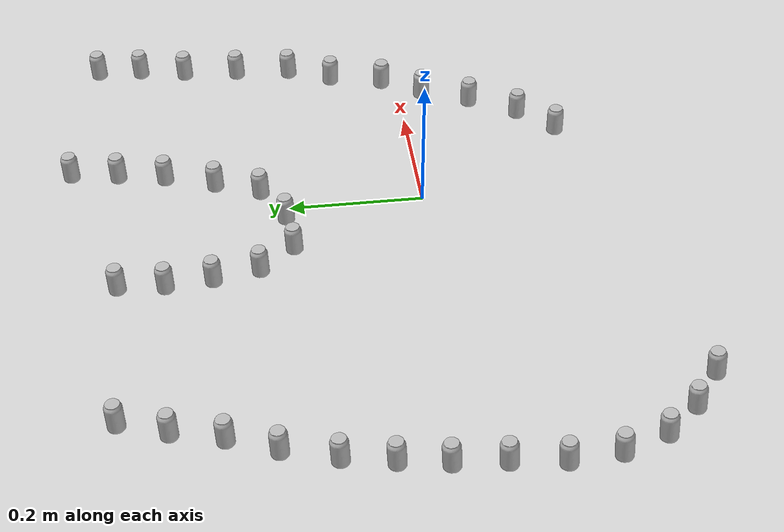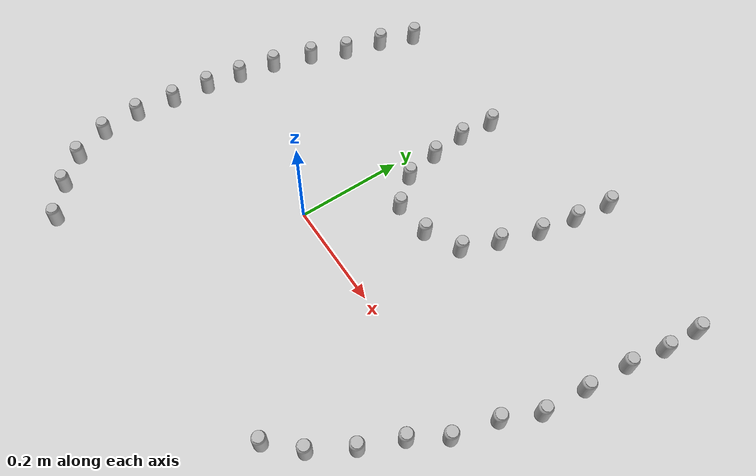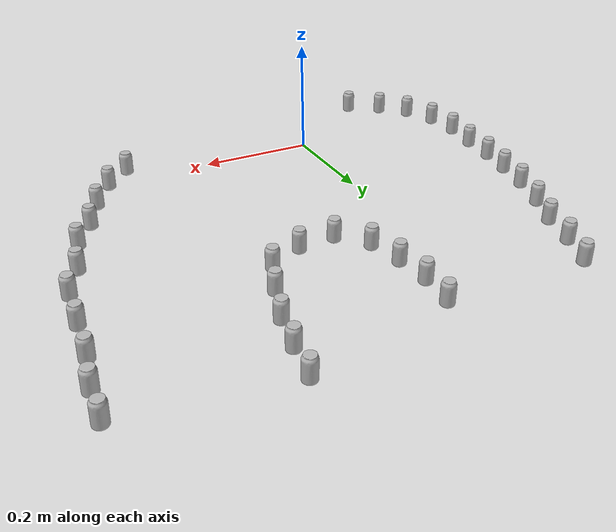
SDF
<sdf version="1.4">
 <world name="default">
  <model name="ground_plane">
   <static>1</static>
   <link name="link">
    <collision name="collision">
     <geometry><plane><normal>0 0 1</normal><size>100 100</size></plane></geometry>
     <surface><friction><ode><mu>100</mu><mu2>50</mu2></ode></friction></surface>
    </collision>
    <visual name="visual">
     <cast_shadows>0</cast_shadows>
     <geometry><plane><normal>0 0 1</normal><size>100 100</size></plane></geometry>
     <material>
      <script><uri>file://media/materials/scripts/gazebo.material</uri><name>Gazebo/Grey</name></script>
     </material>
    </visual>
    <velocity_decay><linear>0</linear><angular>0</angular></velocity_decay>
   </link>
  </model>
  <model name="coke_can">
   <static>1</static>
   <link name="link">
    <inertial>
     <pose>-0.01 -0.012 0.15 0 -0 0</pose>
     <mass>0.39</mass>
     <inertia><ixx>0.00058</ixx><ixy>0</ixy><ixz>0</ixz><iyy>0.00058</iyy><iyz>0</iyz><izz>0.00019</izz></inertia>
    </inertial>
    <collision name="collision">
     <pose>0 0 -0.183 0 -0 0</pose>
     <geometry>
      <mesh><uri>model://coke_can/meshes/coke_can.dae</uri><scale>0.398 0.398 0.398</scale></mesh>
     </geometry>
     <surface>
      <friction><ode><mu>1</mu><mu2>1</mu2></ode></friction>
      <contact><ode><kp>1e+07</kp><kd>1</kd><min_depth>0.001</min_depth><max_vel>0.1</max_vel></ode></contact>
     </surface>
    </collision>
    <visual name="visual">
     <pose>0 0 -0.183 0 -0 0</pose>
     <geometry>
      <mesh><uri>model://coke_can/meshes/coke_can.dae</uri><scale>0.398 0.398 0.398</scale></mesh>
     </geometry>
    </visual>
    <velocity_decay><linear>0</linear><angular>0</angular></velocity_decay>
   </link>
   <pose>0.38604 -0.135676 0 0 -0 0</pose>
  </model>
  <model name="coke_can_0">
   <static>1</static>
   <link name="link">
    <inertial>
     <pose>-0.01 -0.012 0.15 0 -0 0</pose>
     <mass>0.39</mass>
     <inertia><ixx>0.00058</ixx><ixy>0</ixy><ixz>0</ixz><iyy>0.00058</iyy><iyz>0</iyz><izz>0.00019</izz></inertia>
    </inertial>
    <collision name="collision">
     <pose>0 0 -0.183 0 -0 0</pose>
     <geometry>
      <mesh><uri>model://coke_can/meshes/coke_can.dae</uri><scale>0.398 0.398 0.398</scale></mesh>
     </geometry>
     <surface>
      <friction><ode><mu>1</mu><mu2>1</mu2></ode></friction>
      <contact><ode><kp>1e+07</kp><kd>1</kd><min_depth>0.001</min_depth><max_vel>0.1</max_vel></ode></contact>
     </surface>
    </collision>
    <visual name="visual">
     <pose>0 0 -0.183 0 -0 0</pose>
     <geometry>
      <mesh><uri>model://coke_can/meshes/coke_can.dae</uri><scale>0.398 0.398 0.398</scale></mesh>
     </geometry>
    </visual>
    <velocity_decay><linear>0</linear><angular>0</angular></velocity_decay>
   </link>
   <pose>0.418667 -0.059022 0 0 -0 0</pose>
  </model>
  <model name="coke_can_2">
   <static>1</static>
   <link name="link">
    <inertial>
     <pose>-0.01 -0.012 0.15 0 -0 0</pose>
     <mass>0.39</mass>
     <inertia><ixx>0.00058</ixx><ixy>0</ixy><ixz>0</ixz><iyy>0.00058</iyy><iyz>0</iyz><izz>0.00019</izz></inertia>
    </inertial>
    <collision name="collision">
     <pose>0 0 -0.183 0 -0 0</pose>
     <geometry>
      <mesh><uri>model://coke_can/meshes/coke_can.dae</uri><scale>0.398 0.398 0.398</scale></mesh>
     </geometry>
     <surface>
      <friction><ode><mu>1</mu><mu2>1</mu2></ode></friction>
      <contact><ode><kp>1e+07</kp><kd>1</kd><min_depth>0.001</min_depth><max_vel>0.1</max_vel></ode></contact>
     </surface>
    </collision>
    <visual name="visual">
     <pose>0 0 -0.183 0 -0 0</pose>
     <geometry>
      <mesh><uri>model://coke_can/meshes/coke_can.dae</uri><scale>0.398 0.398 0.398</scale></mesh>
     </geometry>
    </visual>
    <velocity_decay><linear>0</linear><angular>0</angular></velocity_decay>
   </link>
   <pose>0.288769 -0.265685 0 0 -0 0</pose>
  </model>
  <model name="coke_can_3">
   <static>1</static>
   <link name="link">
    <inertial>
     <pose>-0.01 -0.012 0.15 0 -0 0</pose>
     <mass>0.39</mass>
     <inertia><ixx>0.00058</ixx><ixy>0</ixy><ixz>0</ixz><iyy>0.00058</iyy><iyz>0</iyz><izz>0.00019</izz></inertia>
    </inertial>
    <collision name="collision">
     <pose>0 0 -0.183 0 -0 0</pose>
     <geometry>
      <mesh><uri>model://coke_can/meshes/coke_can.dae</uri><scale>0.398 0.398 0.398</scale></mesh>
     </geometry>
     <surface>
      <friction><ode><mu>1</mu><mu2>1</mu2></ode></friction>
      <contact><ode><kp>1e+07</kp><kd>1</kd><min_depth>0.001</min_depth><max_vel>0.1</max_vel></ode></contact>
     </surface>
    </collision>
    <visual name="visual">
     <pose>0 0 -0.183 0 -0 0</pose>
     <geometry>
      <mesh><uri>model://coke_can/meshes/coke_can.dae</uri><scale>0.398 0.398 0.398</scale></mesh>
     </geometry>
    </visual>
    <velocity_decay><linear>0</linear><angular>0</angular></velocity_decay>
   </link>
   <pose>0.479275 0.091399 0 0 -0 0</pose>
  </model>
  <model name="coke_can_4">
   <static>1</static>
   <link name="link">
    <inertial>
     <pose>-0.01 -0.012 0.15 0 -0 0</pose>
     <mass>0.39</mass>
     <inertia><ixx>0.00058</ixx><ixy>0</ixy><ixz>0</ixz><iyy>0.00058</iyy><iyz>0</iyz><izz>0.00019</izz></inertia>
    </inertial>
    <collision name="collision">
     <pose>0 0 -0.183 0 -0 0</pose>
     <geometry>
      <mesh><uri>model://coke_can/meshes/coke_can.dae</uri><scale>0.398 0.398 0.398</scale></mesh>
     </geometry>
     <surface>
      <friction><ode><mu>1</mu><mu2>1</mu2></ode></friction>
      <contact><ode><kp>1e+07</kp><kd>1</kd><min_depth>0.001</min_depth><max_vel>0.1</max_vel></ode></contact>
     </surface>
    </collision>
    <visual name="visual">
     <pose>0 0 -0.183 0 -0 0</pose>
     <geometry>
      <mesh><uri>model://coke_can/meshes/coke_can.dae</uri><scale>0.398 0.398 0.398</scale></mesh>
     </geometry>
    </visual>
    <velocity_decay><linear>0</linear><angular>0</angular></velocity_decay>
   </link>
   <pose>0.457915 0.005194 0 0 -0 0</pose>
  </model>
  <model name="coke_can_5">
   <static>1</static>
   <link name="link">
    <inertial>
     <pose>-0.01 -0.012 0.15 0 -0 0</pose>
     <mass>0.39</mass>
     <inertia><ixx>0.00058</ixx><ixy>0</ixy><ixz>0</ixz><iyy>0.00058</iyy><iyz>0</iyz><izz>0.00019</izz></inertia>
    </inertial>
    <collision name="collision">
     <pose>0 0 -0.183 0 -0 0</pose>
     <geometry>
      <mesh><uri>model://coke_can/meshes/coke_can.dae</uri><scale>0.398 0.398 0.398</scale></mesh>
     </geometry>
     <surface>
      <friction><ode><mu>1</mu><mu2>1</mu2></ode></friction>
      <contact><ode><kp>1e+07</kp><kd>1</kd><min_depth>0.001</min_depth><max_vel>0.1</max_vel></ode></contact>
     </surface>
    </collision>
    <visual name="visual">
     <pose>0 0 -0.183 0 -0 0</pose>
     <geometry>
      <mesh><uri>model://coke_can/meshes/coke_can.dae</uri><scale>0.398 0.398 0.398</scale></mesh>
     </geometry>
    </visual>
    <velocity_decay><linear>0</linear><angular>0</angular></velocity_decay>
   </link>
   <pose>0.341948 -0.210761 0 0 -0 0</pose>
  </model>
  <model name="coke_can_6">
   <static>1</static>
   <link name="link">
    <inertial>
     <mass>0.39</mass>
     <inertia><ixx>0.00058</ixx><ixy>0</ixy><ixz>0</ixz><iyy>0.00058</iyy><iyz>0</iyz><izz>0.00019</izz></inertia>
    </inertial>
    <collision name="collision">
     <pose>0 0 -0.183 0 -0 0</pose>
     <geometry>
      <mesh><uri>model://coke_can/meshes/coke_can.dae</uri><scale>0.398 0.398 0.398</scale></mesh>
     </geometry>
     <surface>
      <friction><ode><mu>1</mu><mu2>1</mu2></ode></friction>
      <contact><ode><kp>1e+07</kp><kd>1</kd><min_depth>0.001</min_depth><max_vel>0.1</max_vel></ode></contact>
     </surface>
    </collision>
    <visual name="visual">
     <pose>0 0 -0.183 0 -0 0</pose>
     <geometry>
      <mesh><uri>model://coke_can/meshes/coke_can.dae</uri><scale>0.398 0.398 0.398</scale></mesh>
     </geometry>
    </visual>
    <velocity_decay><linear>0</linear><angular>0</angular></velocity_decay>
   </link>
   <pose>0.511163 0.167151 -0.001657 -0.05647 0.004812 0.001626</pose>
   <static>0</static>
  </model>
  <model name="coke_can_7">
   <static>1</static>
   <link name="link">
    <inertial>
     <mass>0.39</mass>
     <inertia><ixx>0.00058</ixx><ixy>0</ixy><ixz>0</ixz><iyy>0.00058</iyy><iyz>0</iyz><izz>0.00019</izz></inertia>
    </inertial>
    <collision name="collision">
     <pose>0 0 -0.183 0 -0 0</pose>
     <geometry>
      <mesh><uri>model://coke_can/meshes/coke_can.dae</uri><scale>0.398 0.398 0.398</scale></mesh>
     </geometry>
     <surface>
      <friction><ode><mu>1</mu><mu2>1</mu2></ode></friction>
      <contact><ode><kp>1e+07</kp><kd>1</kd><min_depth>0.001</min_depth><max_vel>0.1</max_vel></ode></contact>
     </surface>
    </collision>
    <visual name="visual">
     <pose>0 0 -0.183 0 -0 0</pose>
     <geometry>
      <mesh><uri>model://coke_can/meshes/coke_can.dae</uri><scale>0.398 0.398 0.398</scale></mesh>
     </geometry>
    </visual>
    <velocity_decay><linear>0</linear><angular>0</angular></velocity_decay>
   </link>
   <pose>0.519485 0.256787 -0.001657 -0.05647 0.004812 0.001626</pose>
   <static>0</static>
  </model>
  <model name="coke_can_8">
   <static>1</static>
   <link name="link">
    <inertial>
     <mass>0.39</mass>
     <inertia><ixx>0.00058</ixx><ixy>0</ixy><ixz>0</ixz><iyy>0.00058</iyy><iyz>0</iyz><izz>0.00019</izz></inertia>
    </inertial>
    <collision name="collision">
     <pose>0 0 -0.183 0 -0 0</pose>
     <geometry>
      <mesh><uri>model://coke_can/meshes/coke_can.dae</uri><scale>0.398 0.398 0.398</scale></mesh>
     </geometry>
     <surface>
      <friction><ode><mu>1</mu><mu2>1</mu2></ode></friction>
      <contact><ode><kp>1e+07</kp><kd>1</kd><min_depth>0.001</min_depth><max_vel>0.1</max_vel></ode></contact>
     </surface>
    </collision>
    <visual name="visual">
     <pose>0 0 -0.183 0 -0 0</pose>
     <geometry>
      <mesh><uri>model://coke_can/meshes/coke_can.dae</uri><scale>0.398 0.398 0.398</scale></mesh>
     </geometry>
    </visual>
    <velocity_decay><linear>0</linear><angular>0</angular></velocity_decay>
   </link>
   <pose>0.52765 0.34668 -0.001657 -0.05647 0.004812 0.001626</pose>
   <static>0</static>
  </model>
  <model name="coke_can_9">
   <static>1</static>
   <link name="link">
    <inertial>
     <mass>0.39</mass>
     <inertia><ixx>0.00058</ixx><ixy>0</ixy><ixz>0</ixz><iyy>0.00058</iyy><iyz>0</iyz><izz>0.00019</izz></inertia>
    </inertial>
    <collision name="collision">
     <pose>0 0 -0.183 0 -0 0</pose>
     <geometry>
      <mesh><uri>model://coke_can/meshes/coke_can.dae</uri><scale>0.398 0.398 0.398</scale></mesh>
     </geometry>
     <surface>
      <friction><ode><mu>1</mu><mu2>1</mu2></ode></friction>
      <contact><ode><kp>1e+07</kp><kd>1</kd><min_depth>0.001</min_depth><max_vel>0.1</max_vel></ode></contact>
     </surface>
    </collision>
    <visual name="visual">
     <pose>0 0 -0.183 0 -0 0</pose>
     <geometry>
      <mesh><uri>model://coke_can/meshes/coke_can.dae</uri><scale>0.398 0.398 0.398</scale></mesh>
     </geometry>
    </visual>
    <velocity_decay><linear>0</linear><angular>0</angular></velocity_decay>
   </link>
   <pose>0.541619 0.42249 -0.001657 -0.05647 0.004812 0.001626</pose>
   <static>0</static>
  </model>
  <model name="coke_can_10">
   <static>1</static>
   <link name="link">
    <inertial>
     <mass>0.39</mass>
     <inertia><ixx>0.00058</ixx><ixy>0</ixy><ixz>0</ixz><iyy>0.00058</iyy><iyz>0</iyz><izz>0.00019</izz></inertia>
    </inertial>
    <collision name="collision">
     <pose>0 0 -0.183 0 -0 0</pose>
     <geometry>
      <mesh><uri>model://coke_can/meshes/coke_can.dae</uri><scale>0.398 0.398 0.398</scale></mesh>
     </geometry>
     <surface>
      <friction><ode><mu>1</mu><mu2>1</mu2></ode></friction>
      <contact><ode><kp>1e+07</kp><kd>1</kd><min_depth>0.001</min_depth><max_vel>0.1</max_vel></ode></contact>
     </surface>
    </collision>
    <visual name="visual">
     <pose>0 0 -0.183 0 -0 0</pose>
     <geometry>
      <mesh><uri>model://coke_can/meshes/coke_can.dae</uri><scale>0.398 0.398 0.398</scale></mesh>
     </geometry>
    </visual>
    <velocity_decay><linear>0</linear><angular>0</angular></velocity_decay>
   </link>
   <pose>0.546737 0.494536 -0.001657 -0.05647 0.004812 0.001626</pose>
   <static>0</static>
  </model>
  <model name="coke_can_35">
   <static>1</static>
   <link name="link">
    <inertial>
     <mass>0.39</mass>
     <inertia><ixx>0.00058</ixx><ixy>0</ixy><ixz>0</ixz><iyy>0.00058</iyy><iyz>0</iyz><izz>0.00019</izz></inertia>
    </inertial>
    <collision name="collision">
     <pose>0 0 -0.183 0 -0 0</pose>
     <geometry>
      <mesh><uri>model://coke_can/meshes/coke_can.dae</uri><scale>0.398 0.398 0.398</scale></mesh>
     </geometry>
     <surface>
      <friction><ode><mu>1</mu><mu2>1</mu2></ode></friction>
      <contact><ode><kp>1e+07</kp><kd>1</kd><min_depth>0.001</min_depth><max_vel>0.1</max_vel></ode></contact>
     </surface>
    </collision>
    <visual name="visual">
     <pose>0 0 -0.183 0 -0 0</pose>
     <geometry>
      <mesh><uri>model://coke_can/meshes/coke_can.dae</uri><scale>0.398 0.398 0.398</scale></mesh>
     </geometry>
    </visual>
    <velocity_decay><linear>0</linear><angular>0</angular></velocity_decay>
   </link>
   <pose>-0.311256 0.478026 -0.001657 -0.05647 0.004812 0.001626</pose>
   <static>0</static>
  </model>
  <model name="coke_can_36">
   <static>1</static>
   <link name="link">
    <inertial>
     <mass>0.39</mass>
     <inertia><ixx>0.00058</ixx><ixy>0</ixy><ixz>0</ixz><iyy>0.00058</iyy><iyz>0</iyz><izz>0.00019</izz></inertia>
    </inertial>
    <collision name="collision">
     <pose>0 0 -0.183 0 -0 0</pose>
     <geometry>
      <mesh><uri>model://coke_can/meshes/coke_can.dae</uri><scale>0.398 0.398 0.398</scale></mesh>
     </geometry>
     <surface>
      <friction><ode><mu>1</mu><mu2>1</mu2></ode></friction>
      <contact><ode><kp>1e+07</kp><kd>1</kd><min_depth>0.001</min_depth><max_vel>0.1</max_vel></ode></contact>
     </surface>
    </collision>
    <visual name="visual">
     <pose>0 0 -0.183 0 -0 0</pose>
     <geometry>
      <mesh><uri>model://coke_can/meshes/coke_can.dae</uri><scale>0.398 0.398 0.398</scale></mesh>
     </geometry>
    </visual>
    <velocity_decay><linear>0</linear><angular>0</angular></velocity_decay>
   </link>
   <pose>-0.337638 0.406359 -0.001657 -0.05647 0.004812 0.001626</pose>
   <static>0</static>
  </model>
  <model name="coke_can_37">
   <static>1</static>
   <link name="link">
    <inertial>
     <mass>0.39</mass>
     <inertia><ixx>0.00058</ixx><ixy>0</ixy><ixz>0</ixz><iyy>0.00058</iyy><iyz>0</iyz><izz>0.00019</izz></inertia>
    </inertial>
    <collision name="collision">
     <pose>0 0 -0.183 0 -0 0</pose>
     <geometry>
      <mesh><uri>model://coke_can/meshes/coke_can.dae</uri><scale>0.398 0.398 0.398</scale></mesh>
     </geometry>
     <surface>
      <friction><ode><mu>1</mu><mu2>1</mu2></ode></friction>
      <contact><ode><kp>1e+07</kp><kd>1</kd><min_depth>0.001</min_depth><max_vel>0.1</max_vel></ode></contact>
     </surface>
    </collision>
    <visual name="visual">
     <pose>0 0 -0.183 0 -0 0</pose>
     <geometry>
      <mesh><uri>model://coke_can/meshes/coke_can.dae</uri><scale>0.398 0.398 0.398</scale></mesh>
     </geometry>
    </visual>
    <velocity_decay><linear>0</linear><angular>0</angular></velocity_decay>
   </link>
   <pose>-0.358623 0.330277 -0.001657 -0.05647 0.004812 0.001626</pose>
   <static>0</static>
  </model>
  <model name="coke_can_38">
   <static>1</static>
   <link name="link">
    <inertial>
     <mass>0.39</mass>
     <inertia><ixx>0.00058</ixx><ixy>0</ixy><ixz>0</ixz><iyy>0.00058</iyy><iyz>0</iyz><izz>0.00019</izz></inertia>
    </inertial>
    <collision name="collision">
     <pose>0 0 -0.183 0 -0 0</pose>
     <geometry>
      <mesh><uri>model://coke_can/meshes/coke_can.dae</uri><scale>0.398 0.398 0.398</scale></mesh>
     </geometry>
     <surface>
      <friction><ode><mu>1</mu><mu2>1</mu2></ode></friction>
      <contact><ode><kp>1e+07</kp><kd>1</kd><min_depth>0.001</min_depth><max_vel>0.1</max_vel></ode></contact>
     </surface>
    </collision>
    <visual name="visual">
     <pose>0 0 -0.183 0 -0 0</pose>
     <geometry>
      <mesh><uri>model://coke_can/meshes/coke_can.dae</uri><scale>0.398 0.398 0.398</scale></mesh>
     </geometry>
    </visual>
    <velocity_decay><linear>0</linear><angular>0</angular></velocity_decay>
   </link>
   <pose>-0.388785 0.258528 -0.001657 -0.05647 0.004812 0.001626</pose>
   <static>0</static>
  </model>
  <model name="coke_can_39">
   <static>1</static>
   <link name="link">
    <inertial>
     <mass>0.39</mass>
     <inertia><ixx>0.00058</ixx><ixy>0</ixy><ixz>0</ixz><iyy>0.00058</iyy><iyz>0</iyz><izz>0.00019</izz></inertia>
    </inertial>
    <collision name="collision">
     <pose>0 0 -0.183 0 -0 0</pose>
     <geometry>
      <mesh><uri>model://coke_can/meshes/coke_can.dae</uri><scale>0.398 0.398 0.398</scale></mesh>
     </geometry>
     <surface>
      <friction><ode><mu>1</mu><mu2>1</mu2></ode></friction>
      <contact><ode><kp>1e+07</kp><kd>1</kd><min_depth>0.001</min_depth><max_vel>0.1</max_vel></ode></contact>
     </surface>
    </collision>
    <visual name="visual">
     <pose>0 0 -0.183 0 -0 0</pose>
     <geometry>
      <mesh><uri>model://coke_can/meshes/coke_can.dae</uri><scale>0.398 0.398 0.398</scale></mesh>
     </geometry>
    </visual>
    <velocity_decay><linear>0</linear><angular>0</angular></velocity_decay>
   </link>
   <pose>-0.41347 0.178583 -0.001657 -0.05647 0.004812 0.001626</pose>
   <static>0</static>
  </model>
  <model name="coke_can_40">
   <static>1</static>
   <link name="link">
    <inertial>
     <mass>0.39</mass>
     <inertia><ixx>0.00058</ixx><ixy>0</ixy><ixz>0</ixz><iyy>0.00058</iyy><iyz>0</iyz><izz>0.00019</izz></inertia>
    </inertial>
    <collision name="collision">
     <pose>0 0 -0.183 0 -0 0</pose>
     <geometry>
      <mesh><uri>model://coke_can/meshes/coke_can.dae</uri><scale>0.398 0.398 0.398</scale></mesh>
     </geometry>
     <surface>
      <friction><ode><mu>1</mu><mu2>1</mu2></ode></friction>
      <contact><ode><kp>1e+07</kp><kd>1</kd><min_depth>0.001</min_depth><max_vel>0.1</max_vel></ode></contact>
     </surface>
    </collision>
    <visual name="visual">
     <pose>0 0 -0.183 0 -0 0</pose>
     <geometry>
      <mesh><uri>model://coke_can/meshes/coke_can.dae</uri><scale>0.398 0.398 0.398</scale></mesh>
     </geometry>
    </visual>
    <velocity_decay><linear>0</linear><angular>0</angular></velocity_decay>
   </link>
   <pose>-0.42842 0.103395 -0.001657 -0.05647 0.004812 0.001626</pose>
   <static>0</static>
  </model>
  <model name="coke_can_41">
   <static>1</static>
   <link name="link">
    <inertial>
     <mass>0.39</mass>
     <inertia><ixx>0.00058</ixx><ixy>0</ixy><ixz>0</ixz><iyy>0.00058</iyy><iyz>0</iyz><izz>0.00019</izz></inertia>
    </inertial>
    <collision name="collision">
     <pose>0 0 -0.183 0 -0 0</pose>
     <geometry>
      <mesh><uri>model://coke_can/meshes/coke_can.dae</uri><scale>0.398 0.398 0.398</scale></mesh>
     </geometry>
     <surface>
      <friction><ode><mu>1</mu><mu2>1</mu2></ode></friction>
      <contact><ode><kp>1e+07</kp><kd>1</kd><min_depth>0.001</min_depth><max_vel>0.1</max_vel></ode></contact>
     </surface>
    </collision>
    <visual name="visual">
     <pose>0 0 -0.183 0 -0 0</pose>
     <geometry>
      <mesh><uri>model://coke_can/meshes/coke_can.dae</uri><scale>0.398 0.398 0.398</scale></mesh>
     </geometry>
    </visual>
    <velocity_decay><linear>0</linear><angular>0</angular></velocity_decay>
   </link>
   <pose>-0.440404 0.030543 -0.001657 -0.05647 0.004812 0.001626</pose>
   <static>0</static>
  </model>
  <model name="coke_can_42">
   <static>1</static>
   <link name="link">
    <inertial>
     <mass>0.39</mass>
     <inertia><ixx>0.00058</ixx><ixy>0</ixy><ixz>0</ixz><iyy>0.00058</iyy><iyz>0</iyz><izz>0.00019</izz></inertia>
    </inertial>
    <collision name="collision">
     <pose>0 0 -0.183 0 -0 0</pose>
     <geometry>
      <mesh><uri>model://coke_can/meshes/coke_can.dae</uri><scale>0.398 0.398 0.398</scale></mesh>
     </geometry>
     <surface>
      <friction><ode><mu>1</mu><mu2>1</mu2></ode></friction>
      <contact><ode><kp>1e+07</kp><kd>1</kd><min_depth>0.001</min_depth><max_vel>0.1</max_vel></ode></contact>
     </surface>
    </collision>
    <visual name="visual">
     <pose>0 0 -0.183 0 -0 0</pose>
     <geometry>
      <mesh><uri>model://coke_can/meshes/coke_can.dae</uri><scale>0.398 0.398 0.398</scale></mesh>
     </geometry>
    </visual>
    <velocity_decay><linear>0</linear><angular>0</angular></velocity_decay>
   </link>
   <pose>-0.446989 -0.046725 -0.001657 -0.05647 0.004812 0.001626</pose>
   <static>0</static>
  </model>
  <model name="coke_can_43">
   <static>1</static>
   <link name="link">
    <inertial>
     <mass>0.39</mass>
     <inertia><ixx>0.00058</ixx><ixy>0</ixy><ixz>0</ixz><iyy>0.00058</iyy><iyz>0</iyz><izz>0.00019</izz></inertia>
    </inertial>
    <collision name="collision">
     <pose>0 0 -0.183 0 -0 0</pose>
     <geometry>
      <mesh><uri>model://coke_can/meshes/coke_can.dae</uri><scale>0.398 0.398 0.398</scale></mesh>
     </geometry>
     <surface>
      <friction><ode><mu>1</mu><mu2>1</mu2></ode></friction>
      <contact><ode><kp>1e+07</kp><kd>1</kd><min_depth>0.001</min_depth><max_vel>0.1</max_vel></ode></contact>
     </surface>
    </collision>
    <visual name="visual">
     <pose>0 0 -0.183 0 -0 0</pose>
     <geometry>
      <mesh><uri>model://coke_can/meshes/coke_can.dae</uri><scale>0.398 0.398 0.398</scale></mesh>
     </geometry>
    </visual>
    <velocity_decay><linear>0</linear><angular>0</angular></velocity_decay>
   </link>
   <pose>-0.456551 -0.126326 -0.001657 -0.05647 0.004812 0.001626</pose>
   <static>0</static>
  </model>
  <model name="coke_can_44">
   <static>1</static>
   <link name="link">
    <inertial>
     <mass>0.39</mass>
     <inertia><ixx>0.00058</ixx><ixy>0</ixy><ixz>0</ixz><iyy>0.00058</iyy><iyz>0</iyz><izz>0.00019</izz></inertia>
    </inertial>
    <collision name="collision">
     <pose>0 0 -0.183 0 -0 0</pose>
     <geometry>
      <mesh><uri>model://coke_can/meshes/coke_can.dae</uri><scale>0.398 0.398 0.398</scale></mesh>
     </geometry>
     <surface>
      <friction><ode><mu>1</mu><mu2>1</mu2></ode></friction>
      <contact><ode><kp>1e+07</kp><kd>1</kd><min_depth>0.001</min_depth><max_vel>0.1</max_vel></ode></contact>
     </surface>
    </collision>
    <visual name="visual">
     <pose>0 0 -0.183 0 -0 0</pose>
     <geometry>
      <mesh><uri>model://coke_can/meshes/coke_can.dae</uri><scale>0.398 0.398 0.398</scale></mesh>
     </geometry>
    </visual>
    <velocity_decay><linear>0</linear><angular>0</angular></velocity_decay>
   </link>
   <pose>-0.450263 -0.204053 -0.001657 -0.05647 0.004812 0.001626</pose>
   <static>0</static>
  </model>
  <model name="coke_can_45">
   <static>1</static>
   <link name="link">
    <inertial>
     <mass>0.39</mass>
     <inertia><ixx>0.00058</ixx><ixy>0</ixy><ixz>0</ixz><iyy>0.00058</iyy><iyz>0</iyz><izz>0.00019</izz></inertia>
    </inertial>
    <collision name="collision">
     <pose>0 0 -0.183 0 -0 0</pose>
     <geometry>
      <mesh><uri>model://coke_can/meshes/coke_can.dae</uri><scale>0.398 0.398 0.398</scale></mesh>
     </geometry>
     <surface>
      <friction><ode><mu>1</mu><mu2>1</mu2></ode></friction>
      <contact><ode><kp>1e+07</kp><kd>1</kd><min_depth>0.001</min_depth><max_vel>0.1</max_vel></ode></contact>
     </surface>
    </collision>
    <visual name="visual">
     <pose>0 0 -0.183 0 -0 0</pose>
     <geometry>
      <mesh><uri>model://coke_can/meshes/coke_can.dae</uri><scale>0.398 0.398 0.398</scale></mesh>
     </geometry>
    </visual>
    <velocity_decay><linear>0</linear><angular>0</angular></velocity_decay>
   </link>
   <pose>-0.423002 -0.272991 -0.001657 -0.05647 0.004812 0.001626</pose>
   <static>0</static>
  </model>
  <model name="coke_can_46">
   <static>1</static>
   <link name="link">
    <inertial>
     <mass>0.39</mass>
     <inertia><ixx>0.00058</ixx><ixy>0</ixy><ixz>0</ixz><iyy>0.00058</iyy><iyz>0</iyz><izz>0.00019</izz></inertia>
    </inertial>
    <collision name="collision">
     <pose>0 0 -0.183 0 -0 0</pose>
     <geometry>
      <mesh><uri>model://coke_can/meshes/coke_can.dae</uri><scale>0.398 0.398 0.398</scale></mesh>
     </geometry>
     <surface>
      <friction><ode><mu>1</mu><mu2>1</mu2></ode></friction>
      <contact><ode><kp>1e+07</kp><kd>1</kd><min_depth>0.001</min_depth><max_vel>0.1</max_vel></ode></contact>
     </surface>
    </collision>
    <visual name="visual">
     <pose>0 0 -0.183 0 -0 0</pose>
     <geometry>
      <mesh><uri>model://coke_can/meshes/coke_can.dae</uri><scale>0.398 0.398 0.398</scale></mesh>
     </geometry>
    </visual>
    <velocity_decay><linear>0</linear><angular>0</angular></velocity_decay>
   </link>
   <pose>-0.374926 -0.32558 -0.001657 -0.05647 0.004812 0.001626</pose>
   <static>0</static>
  </model>
  <model name="coke_can_47">
   <static>1</static>
   <link name="link">
    <inertial>
     <mass>0.39</mass>
     <inertia><ixx>0.00058</ixx><ixy>0</ixy><ixz>0</ixz><iyy>0.00058</iyy><iyz>0</iyz><izz>0.00019</izz></inertia>
    </inertial>
    <collision name="collision">
     <pose>0 0 -0.183 0 -0 0</pose>
     <geometry>
      <mesh><uri>model://coke_can/meshes/coke_can.dae</uri><scale>0.398 0.398 0.398</scale></mesh>
     </geometry>
     <surface>
      <friction><ode><mu>1</mu><mu2>1</mu2></ode></friction>
      <contact><ode><kp>1e+07</kp><kd>1</kd><min_depth>0.001</min_depth><max_vel>0.1</max_vel></ode></contact>
     </surface>
    </collision>
    <visual name="visual">
     <pose>0 0 -0.183 0 -0 0</pose>
     <geometry>
      <mesh><uri>model://coke_can/meshes/coke_can.dae</uri><scale>0.398 0.398 0.398</scale></mesh>
     </geometry>
    </visual>
    <velocity_decay><linear>0</linear><angular>0</angular></velocity_decay>
   </link>
   <pose>-0.311902 -0.370268 -0.001657 -0.05647 0.004812 0.001626</pose>
   <static>0</static>
  </model>
  <model name="coke_can_48">
   <static>1</static>
   <link name="link">
    <inertial>
     <mass>0.39</mass>
     <inertia><ixx>0.00058</ixx><ixy>0</ixy><ixz>0</ixz><iyy>0.00058</iyy><iyz>0</iyz><izz>0.00019</izz></inertia>
    </inertial>
    <collision name="collision">
     <pose>0 0 -0.183 0 -0 0</pose>
     <geometry>
      <mesh><uri>model://coke_can/meshes/coke_can.dae</uri><scale>0.398 0.398 0.398</scale></mesh>
     </geometry>
     <surface>
      <friction><ode><mu>1</mu><mu2>1</mu2></ode></friction>
      <contact><ode><kp>1e+07</kp><kd>1</kd><min_depth>0.001</min_depth><max_vel>0.1</max_vel></ode></contact>
     </surface>
    </collision>
    <visual name="visual">
     <pose>0 0 -0.183 0 -0 0</pose>
     <geometry>
      <mesh><uri>model://coke_can/meshes/coke_can.dae</uri><scale>0.398 0.398 0.398</scale></mesh>
     </geometry>
    </visual>
    <velocity_decay><linear>0</linear><angular>0</angular></velocity_decay>
   </link>
   <pose>0.178815 0.240981 -0.001657 -0.05647 0.004812 0.001626</pose>
   <static>0</static>
  </model>
  <model name="coke_can_49">
   <static>1</static>
   <link name="link">
    <inertial>
     <mass>0.39</mass>
     <inertia><ixx>0.00058</ixx><ixy>0</ixy><ixz>0</ixz><iyy>0.00058</iyy><iyz>0</iyz><izz>0.00019</izz></inertia>
    </inertial>
    <collision name="collision">
     <pose>0 0 -0.183 0 -0 0</pose>
     <geometry>
      <mesh><uri>model://coke_can/meshes/coke_can.dae</uri><scale>0.398 0.398 0.398</scale></mesh>
     </geometry>
     <surface>
      <friction><ode><mu>1</mu><mu2>1</mu2></ode></friction>
      <contact><ode><kp>1e+07</kp><kd>1</kd><min_depth>0.001</min_depth><max_vel>0.1</max_vel></ode></contact>
     </surface>
    </collision>
    <visual name="visual">
     <pose>0 0 -0.183 0 -0 0</pose>
     <geometry>
      <mesh><uri>model://coke_can/meshes/coke_can.dae</uri><scale>0.398 0.398 0.398</scale></mesh>
     </geometry>
    </visual>
    <velocity_decay><linear>0</linear><angular>0</angular></velocity_decay>
   </link>
   <pose>0.206717 0.311909 -0.001657 -0.05647 0.004812 0.001626</pose>
   <static>0</static>
  </model>
  <model name="coke_can_50">
   <static>1</static>
   <link name="link">
    <inertial>
     <mass>0.39</mass>
     <inertia><ixx>0.00058</ixx><ixy>0</ixy><ixz>0</ixz><iyy>0.00058</iyy><iyz>0</iyz><izz>0.00019</izz></inertia>
    </inertial>
    <collision name="collision">
     <pose>0 0 -0.183 0 -0 0</pose>
     <geometry>
      <mesh><uri>model://coke_can/meshes/coke_can.dae</uri><scale>0.398 0.398 0.398</scale></mesh>
     </geometry>
     <surface>
      <friction><ode><mu>1</mu><mu2>1</mu2></ode></friction>
      <contact><ode><kp>1e+07</kp><kd>1</kd><min_depth>0.001</min_depth><max_vel>0.1</max_vel></ode></contact>
     </surface>
    </collision>
    <visual name="visual">
     <pose>0 0 -0.183 0 -0 0</pose>
     <geometry>
      <mesh><uri>model://coke_can/meshes/coke_can.dae</uri><scale>0.398 0.398 0.398</scale></mesh>
     </geometry>
    </visual>
    <velocity_decay><linear>0</linear><angular>0</angular></velocity_decay>
   </link>
   <pose>0.232928 0.391117 -0.001657 -0.05647 0.004812 0.001626</pose>
   <static>0</static>
  </model>
  <model name="coke_can_51">
   <static>1</static>
   <link name="link">
    <inertial>
     <mass>0.39</mass>
     <inertia><ixx>0.00058</ixx><ixy>0</ixy><ixz>0</ixz><iyy>0.00058</iyy><iyz>0</iyz><izz>0.00019</izz></inertia>
    </inertial>
    <collision name="collision">
     <pose>0 0 -0.183 0 -0 0</pose>
     <geometry>
      <mesh><uri>model://coke_can/meshes/coke_can.dae</uri><scale>0.398 0.398 0.398</scale></mesh>
     </geometry>
     <surface>
      <friction><ode><mu>1</mu><mu2>1</mu2></ode></friction>
      <contact><ode><kp>1e+07</kp><kd>1</kd><min_depth>0.001</min_depth><max_vel>0.1</max_vel></ode></contact>
     </surface>
    </collision>
    <visual name="visual">
     <pose>0 0 -0.183 0 -0 0</pose>
     <geometry>
      <mesh><uri>model://coke_can/meshes/coke_can.dae</uri><scale>0.398 0.398 0.398</scale></mesh>
     </geometry>
    </visual>
    <velocity_decay><linear>0</linear><angular>0</angular></velocity_decay>
   </link>
   <pose>0.247882 0.466294 -0.001657 -0.05647 0.004812 0.001626</pose>
   <static>0</static>
  </model>
  <model name="coke_can_52">
   <static>1</static>
   <link name="link">
    <inertial>
     <mass>0.39</mass>
     <inertia><ixx>0.00058</ixx><ixy>0</ixy><ixz>0</ixz><iyy>0.00058</iyy><iyz>0</iyz><izz>0.00019</izz></inertia>
    </inertial>
    <collision name="collision">
     <pose>0 0 -0.183 0 -0 0</pose>
     <geometry>
      <mesh><uri>model://coke_can/meshes/coke_can.dae</uri><scale>0.398 0.398 0.398</scale></mesh>
     </geometry>
     <surface>
      <friction><ode><mu>1</mu><mu2>1</mu2></ode></friction>
      <contact><ode><kp>1e+07</kp><kd>1</kd><min_depth>0.001</min_depth><max_vel>0.1</max_vel></ode></contact>
     </surface>
    </collision>
    <visual name="visual">
     <pose>0 0 -0.183 0 -0 0</pose>
     <geometry>
      <mesh><uri>model://coke_can/meshes/coke_can.dae</uri><scale>0.398 0.398 0.398</scale></mesh>
     </geometry>
    </visual>
    <velocity_decay><linear>0</linear><angular>0</angular></velocity_decay>
   </link>
   <pose>0.259062 0.541384 -0.001657 -0.05647 0.004812 0.001626</pose>
   <static>0</static>
  </model>
  <model name="coke_can_63">
   <static>1</static>
   <link name="link">
    <inertial>
     <mass>0.39</mass>
     <inertia><ixx>0.00058</ixx><ixy>0</ixy><ixz>0</ixz><iyy>0.00058</iyy><iyz>0</iyz><izz>0.00019</izz></inertia>
    </inertial>
    <collision name="collision">
     <pose>0 0 -0.183 0 -0 0</pose>
     <geometry>
      <mesh><uri>model://coke_can/meshes/coke_can.dae</uri><scale>0.398 0.398 0.398</scale></mesh>
     </geometry>
     <surface>
      <friction><ode><mu>1</mu><mu2>1</mu2></ode></friction>
      <contact><ode><kp>1e+07</kp><kd>1</kd><min_depth>0.001</min_depth><max_vel>0.1</max_vel></ode></contact>
     </surface>
    </collision>
    <visual name="visual">
     <pose>0 0 -0.183 0 -0 0</pose>
     <geometry>
      <mesh><uri>model://coke_can/meshes/coke_can.dae</uri><scale>0.398 0.398 0.398</scale></mesh>
     </geometry>
    </visual>
    <velocity_decay><linear>0</linear><angular>0</angular></velocity_decay>
   </link>
   <pose>-0.025757 0.472328 -0.001657 -0.05647 0.004812 0.001626</pose>
   <static>0</static>
  </model>
  <model name="coke_can_64">
   <static>1</static>
   <link name="link">
    <inertial>
     <mass>0.39</mass>
     <inertia><ixx>0.00058</ixx><ixy>0</ixy><ixz>0</ixz><iyy>0.00058</iyy><iyz>0</iyz><izz>0.00019</izz></inertia>
    </inertial>
    <collision name="collision">
     <pose>0 0 -0.183 0 -0 0</pose>
     <geometry>
      <mesh><uri>model://coke_can/meshes/coke_can.dae</uri><scale>0.398 0.398 0.398</scale></mesh>
     </geometry>
     <surface>
      <friction><ode><mu>1</mu><mu2>1</mu2></ode></friction>
      <contact><ode><kp>1e+07</kp><kd>1</kd><min_depth>0.001</min_depth><max_vel>0.1</max_vel></ode></contact>
     </surface>
    </collision>
    <visual name="visual">
     <pose>0 0 -0.183 0 -0 0</pose>
     <geometry>
      <mesh><uri>model://coke_can/meshes/coke_can.dae</uri><scale>0.398 0.398 0.398</scale></mesh>
     </geometry>
    </visual>
    <velocity_decay><linear>0</linear><angular>0</angular></velocity_decay>
   </link>
   <pose>-0.03171 0.400369 -0.001657 -0.05647 0.004812 0.001626</pose>
   <static>0</static>
  </model>
  <model name="coke_can_65">
   <static>1</static>
   <link name="link">
    <inertial>
     <mass>0.39</mass>
     <inertia><ixx>0.00058</ixx><ixy>0</ixy><ixz>0</ixz><iyy>0.00058</iyy><iyz>0</iyz><izz>0.00019</izz></inertia>
    </inertial>
    <collision name="collision">
     <pose>0 0 -0.183 0 -0 0</pose>
     <geometry>
      <mesh><uri>model://coke_can/meshes/coke_can.dae</uri><scale>0.398 0.398 0.398</scale></mesh>
     </geometry>
     <surface>
      <friction><ode><mu>1</mu><mu2>1</mu2></ode></friction>
      <contact><ode><kp>1e+07</kp><kd>1</kd><min_depth>0.001</min_depth><max_vel>0.1</max_vel></ode></contact>
     </surface>
    </collision>
    <visual name="visual">
     <pose>0 0 -0.183 0 -0 0</pose>
     <geometry>
      <mesh><uri>model://coke_can/meshes/coke_can.dae</uri><scale>0.398 0.398 0.398</scale></mesh>
     </geometry>
    </visual>
    <velocity_decay><linear>0</linear><angular>0</angular></velocity_decay>
   </link>
   <pose>-0.024796 0.327942 -0.001657 -0.05647 0.004812 0.001626</pose>
   <static>0</static>
  </model>
  <model name="coke_can_66">
   <static>1</static>
   <link name="link">
    <inertial>
     <mass>0.39</mass>
     <inertia><ixx>0.00058</ixx><ixy>0</ixy><ixz>0</ixz><iyy>0.00058</iyy><iyz>0</iyz><izz>0.00019</izz></inertia>
    </inertial>
    <collision name="collision">
     <pose>0 0 -0.183 0 -0 0</pose>
     <geometry>
      <mesh><uri>model://coke_can/meshes/coke_can.dae</uri><scale>0.398 0.398 0.398</scale></mesh>
     </geometry>
     <surface>
      <friction><ode><mu>1</mu><mu2>1</mu2></ode></friction>
      <contact><ode><kp>1e+07</kp><kd>1</kd><min_depth>0.001</min_depth><max_vel>0.1</max_vel></ode></contact>
     </surface>
    </collision>
    <visual name="visual">
     <pose>0 0 -0.183 0 -0 0</pose>
     <geometry>
      <mesh><uri>model://coke_can/meshes/coke_can.dae</uri><scale>0.398 0.398 0.398</scale></mesh>
     </geometry>
    </visual>
    <velocity_decay><linear>0</linear><angular>0</angular></velocity_decay>
   </link>
   <pose>-0.010326 0.255688 -0.001657 -0.05647 0.004812 0.001626</pose>
   <static>0</static>
  </model>
  <model name="coke_can_67">
   <static>1</static>
   <link name="link">
    <inertial>
     <mass>0.39</mass>
     <inertia><ixx>0.00058</ixx><ixy>0</ixy><ixz>0</ixz><iyy>0.00058</iyy><iyz>0</iyz><izz>0.00019</izz></inertia>
    </inertial>
    <collision name="collision">
     <pose>0 0 -0.183 0 -0 0</pose>
     <geometry>
      <mesh><uri>model://coke_can/meshes/coke_can.dae</uri><scale>0.398 0.398 0.398</scale></mesh>
     </geometry>
     <surface>
      <friction><ode><mu>1</mu><mu2>1</mu2></ode></friction>
      <contact><ode><kp>1e+07</kp><kd>1</kd><min_depth>0.001</min_depth><max_vel>0.1</max_vel></ode></contact>
     </surface>
    </collision>
    <visual name="visual">
     <pose>0 0 -0.183 0 -0 0</pose>
     <geometry>
      <mesh><uri>model://coke_can/meshes/coke_can.dae</uri><scale>0.398 0.398 0.398</scale></mesh>
     </geometry>
    </visual>
    <velocity_decay><linear>0</linear><angular>0</angular></velocity_decay>
   </link>
   <pose>0.036289 0.20003 -0.001657 -0.05647 0.004812 0.001626</pose>
   <static>0</static>
  </model>
  <model name="coke_can_68">
   <static>1</static>
   <link name="link">
    <inertial>
     <mass>0.39</mass>
     <inertia><ixx>0.00058</ixx><ixy>0</ixy><ixz>0</ixz><iyy>0.00058</iyy><iyz>0</iyz><izz>0.00019</izz></inertia>
    </inertial>
    <collision name="collision">
     <pose>0 0 -0.183 0 -0 0</pose>
     <geometry>
      <mesh><uri>model://coke_can/meshes/coke_can.dae</uri><scale>0.398 0.398 0.398</scale></mesh>
     </geometry>
     <surface>
      <friction><ode><mu>1</mu><mu2>1</mu2></ode></friction>
      <contact><ode><kp>1e+07</kp><kd>1</kd><min_depth>0.001</min_depth><max_vel>0.1</max_vel></ode></contact>
     </surface>
    </collision>
    <visual name="visual">
     <pose>0 0 -0.183 0 -0 0</pose>
     <geometry>
      <mesh><uri>model://coke_can/meshes/coke_can.dae</uri><scale>0.398 0.398 0.398</scale></mesh>
     </geometry>
    </visual>
    <velocity_decay><linear>0</linear><angular>0</angular></velocity_decay>
   </link>
   <pose>0.110254 0.206223 -0.001657 -0.05647 0.004812 0.001626</pose>
   <static>0</static>
  </model>
 </world>
</sdf>
